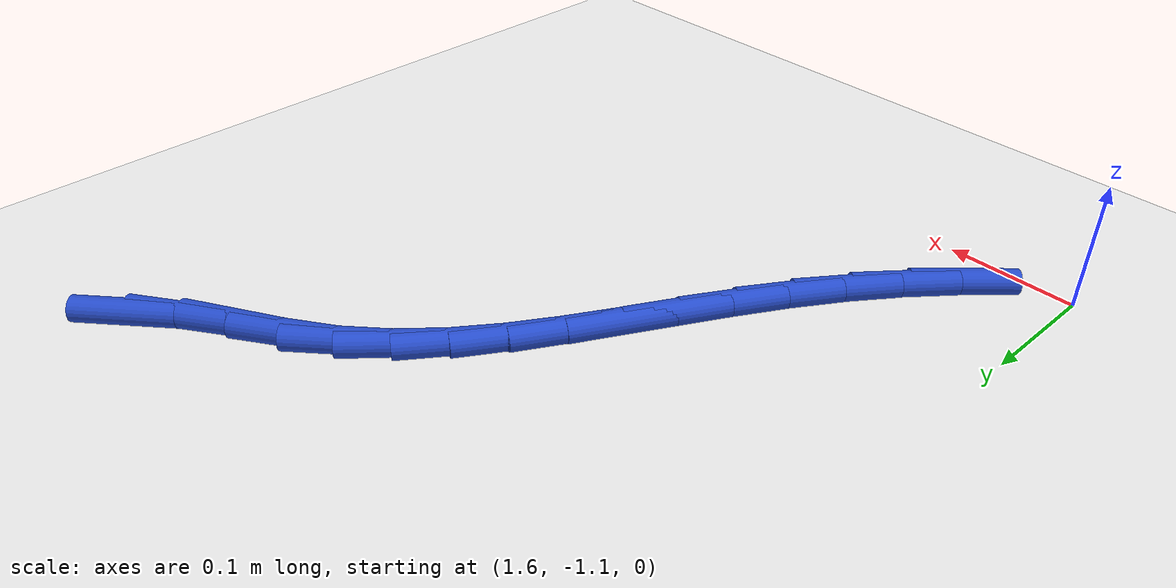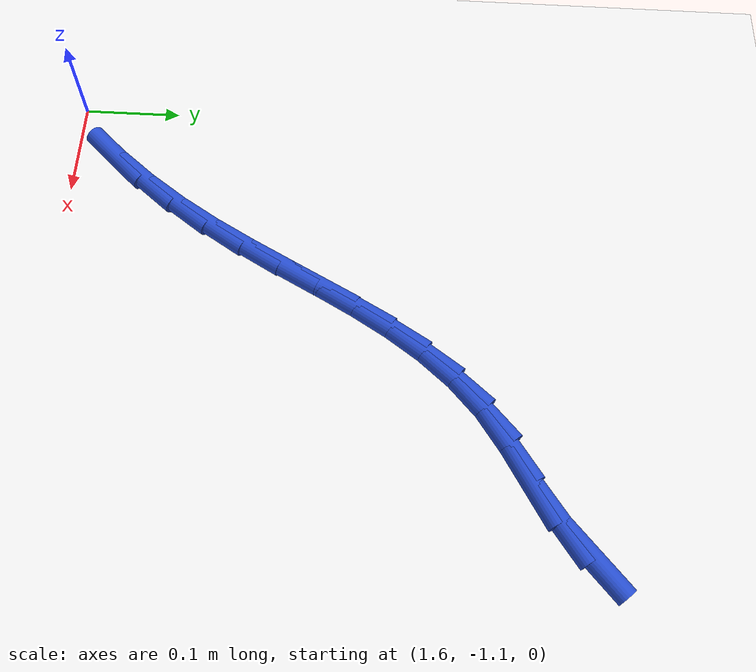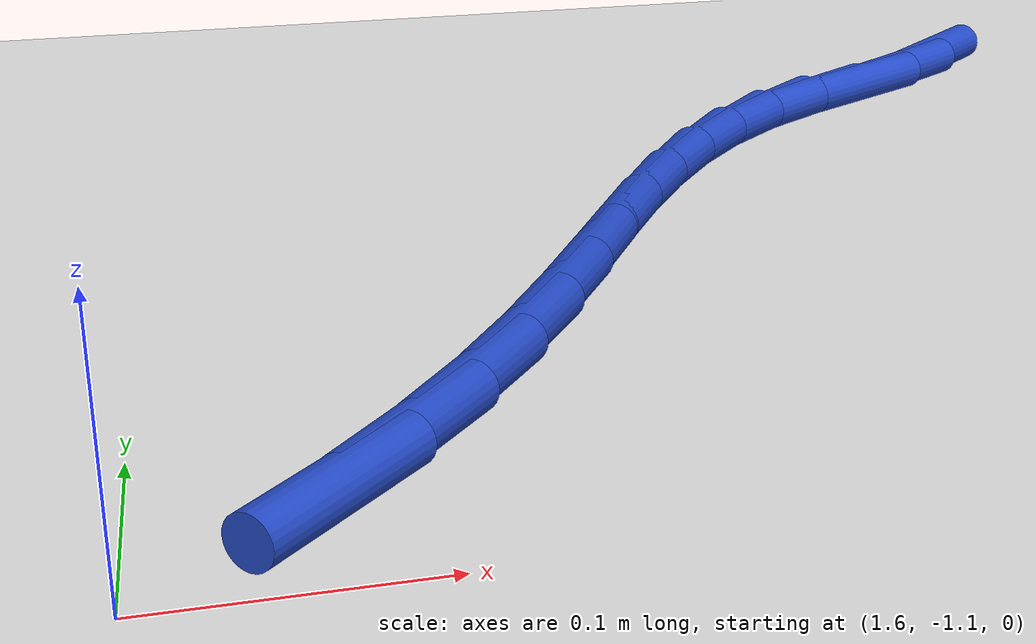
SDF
<sdf version="1.6">
 <world name="default">
  <model name="ground_plane">
   <static>1</static>
   <link name="link">
    <collision name="collision">
     <geometry><plane><normal>0 0 1</normal><size>100 100</size></plane></geometry>
     <surface><friction><ode><mu>100</mu><mu2>50</mu2></ode></friction></surface>
    </collision>
    <visual name="visual">
     <cast_shadows>0</cast_shadows>
     <geometry><plane><normal>0 0 1</normal><size>100 100</size></plane></geometry>
     <material>
      <script><uri>file://media/materials/scripts/gazebo.material</uri><name>Gazebo/WhiteGlow</name></script>
     </material>
    </visual>
   </link>
  </model>
  <model name="line">
   <link name="link_104">
    <pose>2.0494130632294536 -0.5852624851992305 0.01 0 1.57 0.7290968270697277</pose>
    <collision name="collision">
     <geometry><cylinder><radius>0.01</radius><length>0.08</length></cylinder></geometry>
    </collision>
    <visual name="visual">
     <material>
      <script><name>Gazebo/Blue</name><uri>file://media/materials/scripts/gazebo.material</uri></script>
     </material>
     <geometry><cylinder><radius>0.01</radius><length>0.08</length></cylinder></geometry>
    </visual>
   </link>
   <link name="link_105">
    <pose>2.0201957808938924 -0.6113620596667817 0.01 0 1.57 0.612097489538163</pose>
    <collision name="collision">
     <geometry><cylinder><radius>0.01</radius><length>0.08</length></cylinder></geometry>
    </collision>
    <visual name="visual">
     <material>
      <script><name>Gazebo/Blue</name><uri>file://media/materials/scripts/gazebo.material</uri></script>
     </material>
     <geometry><cylinder><radius>0.01</radius><length>0.08</length></cylinder></geometry>
    </visual>
   </link>
   <link name="link_106">
    <pose>1.9875816209078228 -0.634258685147866 0.01 0 1.57 0.5323627130573518</pose>
    <collision name="collision">
     <geometry><cylinder><radius>0.01</radius><length>0.08</length></cylinder></geometry>
    </collision>
    <visual name="visual">
     <material>
      <script><name>Gazebo/Blue</name><uri>file://media/materials/scripts/gazebo.material</uri></script>
     </material>
     <geometry><cylinder><radius>0.01</radius><length>0.08</length></cylinder></geometry>
    </visual>
   </link>
   <link name="link_107">
    <pose>1.952646528456824 -0.6548387820922285 0.01 0 1.57 0.5994292626092094</pose>
    <collision name="collision">
     <geometry><cylinder><radius>0.01</radius><length>0.08</length></cylinder></geometry>
    </collision>
    <visual name="visual">
     <material>
      <script><name>Gazebo/Blue</name><uri>file://media/materials/scripts/gazebo.material</uri></script>
     </material>
     <geometry><cylinder><radius>0.01</radius><length>0.08</length></cylinder></geometry>
    </visual>
   </link>
   <link name="link_108">
    <pose>1.9198755290823046 -0.6772311819813455 0.01 0 1.57 0.73868581080197</pose>
    <collision name="collision">
     <geometry><cylinder><radius>0.01</radius><length>0.08</length></cylinder></geometry>
    </collision>
    <visual name="visual">
     <material>
      <script><name>Gazebo/Blue</name><uri>file://media/materials/scripts/gazebo.material</uri></script>
     </material>
     <geometry><cylinder><radius>0.01</radius><length>0.08</length></cylinder></geometry>
    </visual>
   </link>
   <link name="link_109">
    <pose>1.891212073516334 -0.703334490752592 0.01 0 1.57 0.860132376705459</pose>
    <collision name="collision">
     <geometry><cylinder><radius>0.01</radius><length>0.08</length></cylinder></geometry>
    </collision>
    <visual name="visual">
     <material>
      <script><name>Gazebo/Blue</name><uri>file://media/materials/scripts/gazebo.material</uri></script>
     </material>
     <geometry><cylinder><radius>0.01</radius><length>0.08</length></cylinder></geometry>
    </visual>
   </link>
   <link name="link_110">
    <pose>1.8659514504195045 -0.732683972259168 0.01 0 1.57 0.9559346090463471</pose>
    <collision name="collision">
     <geometry><cylinder><radius>0.01</radius><length>0.08</length></cylinder></geometry>
    </collision>
    <visual name="visual">
     <material>
      <script><name>Gazebo/Blue</name><uri>file://media/materials/scripts/gazebo.material</uri></script>
     </material>
     <geometry><cylinder><radius>0.01</radius><length>0.08</length></cylinder></geometry>
    </visual>
   </link>
   <link name="link_111">
    <pose>1.8433106059131408 -0.7647449738555777 0.01 0 1.57 1.024781926370062</pose>
    <collision name="collision">
     <geometry><cylinder><radius>0.01</radius><length>0.08</length></cylinder></geometry>
    </collision>
    <visual name="visual">
     <material>
      <script><name>Gazebo/Blue</name><uri>file://media/materials/scripts/gazebo.material</uri></script>
     </material>
     <geometry><cylinder><radius>0.01</radius><length>0.08</length></cylinder></geometry>
    </visual>
   </link>
   <link name="link_112">
    <pose>1.8225064861185716 -0.7989828428963243 0.01 0 1.57 1.0676021989727709</pose>
    <collision name="collision">
     <geometry><cylinder><radius>0.01</radius><length>0.08</length></cylinder></geometry>
    </collision>
    <visual name="visual">
     <material>
      <script><name>Gazebo/Blue</name><uri>file://media/materials/scripts/gazebo.material</uri></script>
     </material>
     <geometry><cylinder><radius>0.01</radius><length>0.08</length></cylinder></geometry>
    </visual>
   </link>
   <link name="link_113">
    <pose>1.8027560371571232 -0.834862926735911 0.01 0 1.57 1.0860506192967376</pose>
    <collision name="collision">
     <geometry><cylinder><radius>0.01</radius><length>0.08</length></cylinder></geometry>
    </collision>
    <visual name="visual">
     <material>
      <script><name>Gazebo/Blue</name><uri>file://media/materials/scripts/gazebo.material</uri></script>
     </material>
     <geometry><cylinder><radius>0.01</radius><length>0.08</length></cylinder></geometry>
    </visual>
   </link>
   <link name="link_114">
    <pose>1.783276205150123 -0.8718505727288414 0.01 0 1.57 1.0816690452199569</pose>
    <collision name="collision">
     <geometry><cylinder><radius>0.01</radius><length>0.08</length></cylinder></geometry>
    </collision>
    <visual name="visual">
     <material>
      <script><name>Gazebo/Blue</name><uri>file://media/materials/scripts/gazebo.material</uri></script>
     </material>
     <geometry><cylinder><radius>0.01</radius><length>0.08</length></cylinder></geometry>
    </visual>
   </link>
   <link name="link_115">
    <pose>1.7632839362188963 -0.909411128229619 0.01 0 1.57 1.055614481007737</pose>
    <collision name="collision">
     <geometry><cylinder><radius>0.01</radius><length>0.08</length></cylinder></geometry>
    </collision>
    <visual name="visual">
     <material>
      <script><name>Gazebo/Blue</name><uri>file://media/materials/scripts/gazebo.material</uri></script>
     </material>
     <geometry><cylinder><radius>0.01</radius><length>0.08</length></cylinder></geometry>
    </visual>
   </link>
   <link name="link_116">
    <pose>1.7419961764847727 -0.9470099405927465 0.01 0 1.57 1.0089239515185773</pose>
    <collision name="collision">
     <geometry><cylinder><radius>0.01</radius><length>0.08</length></cylinder></geometry>
    </collision>
    <visual name="visual">
     <material>
      <script><name>Gazebo/Blue</name><uri>file://media/materials/scripts/gazebo.material</uri></script>
     </material>
     <geometry><cylinder><radius>0.01</radius><length>0.08</length></cylinder></geometry>
    </visual>
   </link>
   <link name="link_117">
    <pose>1.718638343630876 -0.9841117224363685 0.01 0 1.57 0.9495226776226715</pose>
    <collision name="collision">
     <geometry><cylinder><radius>0.01</radius><length>0.08</length></cylinder></geometry>
    </collision>
    <visual name="visual">
     <material>
      <script><name>Gazebo/Blue</name><uri>file://media/materials/scripts/gazebo.material</uri></script>
     </material>
     <geometry><cylinder><radius>0.01</radius><length>0.08</length></cylinder></geometry>
    </visual>
   </link>
   <link name="link_118">
    <pose>1.6928403037523294 -1.0201508828621473 0.01 0 1.57 0.8865395084326572</pose>
    <collision name="collision">
     <geometry><cylinder><radius>0.01</radius><length>0.08</length></cylinder></geometry>
    </collision>
    <visual name="visual">
     <material>
      <script><name>Gazebo/Blue</name><uri>file://media/materials/scripts/gazebo.material</uri></script>
     </material>
     <geometry><cylinder><radius>0.01</radius><length>0.08</length></cylinder></geometry>
    </visual>
   </link>
   <link name="link_119">
    <pose>1.6648054436129924 -1.0545188596247912 0.01 0 1.57 0.8185572634897638</pose>
    <collision name="collision">
     <geometry><cylinder><radius>0.01</radius><length>0.08</length></cylinder></geometry>
    </collision>
    <visual name="visual">
     <material>
      <script><name>Gazebo/Blue</name><uri>file://media/materials/scripts/gazebo.material</uri></script>
     </material>
     <geometry><cylinder><radius>0.01</radius><length>0.08</length></cylinder></geometry>
    </visual>
   </link>
  </model>
 </world>
</sdf>
